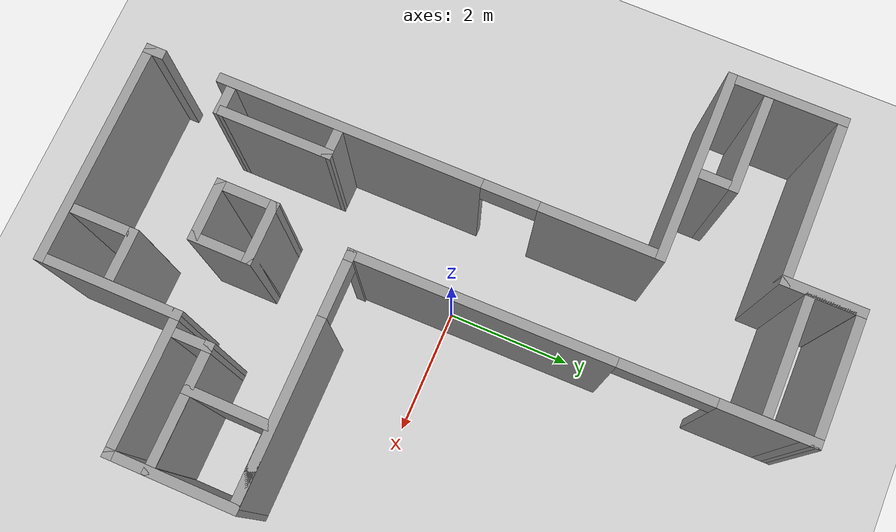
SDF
<?xml version="1.0" ?>
<sdf version="1.4">
  <world name="default">
    <include>
      <uri>model://ground_plane</uri>
    </include>
    <include>
      <uri>model://sun</uri>
    </include>
    <include>
      <uri>model://solustar</uri>
      <name>solustar</name>
    </include>
  </world>
</sdf>

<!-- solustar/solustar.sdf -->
<sdf version='1.6'>
  <model name='solustar'>
    <pose frame=''>-0.170671 -0.004278 0 0 -0 0</pose>
    <link name='Wall_10'>
      <collision name='Wall_10_Collision'>
        <geometry>
          <box>
            <size>1.75 0.15 2.5</size>
          </box>
        </geometry>
        <pose frame=''>0 0 1.25 0 -0 0</pose>
      </collision>
      <visual name='Wall_10_Visual'>
        <pose frame=''>0 0 1.25 0 -0 0</pose>
        <geometry>
          <box>
            <size>1.75 0.15 2.5</size>
          </box>
        </geometry>
        <material>
          <script>
            <uri>file://media/materials/scripts/gazebo.material</uri>
            <name>Gazebo/Grey</name>
          </script>
          <ambient>1 1 1 1</ambient>
        </material>
        <meta>
          <layer>0</layer>
        </meta>
      </visual>
      <pose frame=''>-4.24644 3.55005 0 0 -0 -1.5708</pose>
    </link>
    <link name='Wall_100'>
      <collision name='Wall_100_Collision'>
        <geometry>
          <box>
            <size>1.2 0.15 2.5</size>
          </box>
        </geometry>
        <pose frame=''>0 0 1.25 0 -0 0</pose>
      </collision>
      <visual name='Wall_100_Visual'>
        <pose frame=''>0 0 1.25 0 -0 0</pose>
        <geometry>
          <box>
            <size>1.2 0.15 2.5</size>
          </box>
        </geometry>
        <material>
          <script>
            <uri>file://media/materials/scripts/gazebo.material</uri>
            <name>Gazebo/Grey</name>
          </script>
          <ambient>1 1 1 1</ambient>
        </material>
        <meta>
          <layer>0</layer>
        </meta>
      </visual>
      <pose frame=''>3.57455 -1.46015 0 0 -0 3.14159</pose>
    </link>
    <link name='Wall_103'>
      <collision name='Wall_103_Collision'>
        <geometry>
          <box>
            <size>1.2 0.15 2.5</size>
          </box>
        </geometry>
        <pose frame=''>0 0 1.25 0 -0 0</pose>
      </collision>
      <visual name='Wall_103_Visual'>
        <pose frame=''>0 0 1.25 0 -0 0</pose>
        <geometry>
          <box>
            <size>1.2 0.15 2.5</size>
          </box>
        </geometry>
        <material>
          <script>
            <uri>file://media/materials/scripts/gazebo.material</uri>
            <name>Gazebo/Grey</name>
          </script>
          <ambient>1 1 1 1</ambient>
        </material>
        <meta>
          <layer>0</layer>
        </meta>
      </visual>
      <pose frame=''>3.56613 -2.72793 0 0 -0 0</pose>
    </link>
    <link name='Wall_107'>
      <collision name='Wall_107_Collision'>
        <geometry>
          <box>
            <size>1.4178 0.15 2.5</size>
          </box>
        </geometry>
        <pose frame=''>0 0 1.25 0 -0 0</pose>
      </collision>
      <visual name='Wall_107_Visual'>
        <pose frame=''>0 0 1.25 0 -0 0</pose>
        <geometry>
          <box>
            <size>1.4178 0.15 2.5</size>
          </box>
        </geometry>
        <material>
          <script>
            <uri>file://media/materials/scripts/gazebo.material</uri>
            <name>Gazebo/Grey</name>
          </script>
          <ambient>1 1 1 1</ambient>
        </material>
        <meta>
          <layer>0</layer>
        </meta>
      </visual>
      <pose frame=''>3.04534 -2.09404 0 0 -0 1.56416</pose>
    </link>
    <link name='Wall_12'>
      <collision name='Wall_12_Collision'>
        <geometry>
          <box>
            <size>1.29 0.15 2.5</size>
          </box>
        </geometry>
        <pose frame=''>0 0 1.25 0 -0 0</pose>
      </collision>
      <visual name='Wall_12_Visual'>
        <pose frame=''>0 0 1.25 0 -0 0</pose>
        <geometry>
          <box>
            <size>1.29 0.15 2.5</size>
          </box>
        </geometry>
        <material>
          <script>
            <uri>file://media/materials/scripts/gazebo.material</uri>
            <name>Gazebo/Grey</name>
          </script>
          <ambient>1 1 1 1</ambient>
        </material>
        <meta>
          <layer>0</layer>
        </meta>
      </visual>
      <pose frame=''>-1.63769 4.92005 0 0 -0 1.5708</pose>
    </link>
    <link name='Wall_16'>
      <collision name='Wall_16_Collision'>
        <geometry>
          <box>
            <size>3.095 0.15 2.5</size>
          </box>
        </geometry>
        <pose frame=''>0 0 1.25 0 -0 0</pose>
      </collision>
      <visual name='Wall_16_Visual'>
        <pose frame=''>0 0 1.25 0 -0 0</pose>
        <geometry>
          <box>
            <size>3.095 0.15 2.5</size>
          </box>
        </geometry>
        <material>
          <script>
            <uri>file://media/materials/scripts/gazebo.material</uri>
            <name>Gazebo/Grey</name>
          </script>
          <ambient>1 1 1 1</ambient>
        </material>
        <meta>
          <layer>0</layer>
        </meta>
      </visual>
      <pose frame=''>-2.77502 2.60995 0 0 -0 3.14159</pose>
    </link>
    <link name='Wall_19'>
      <pose frame=''>-1.30252 -1.44005 0 0 -0 -1.5708</pose>
      <visual name='Wall_19_Visual_0'>
        <pose frame=''>-3.1502 0 1.25 0 -0 0</pose>
        <geometry>
          <box>
            <size>1.9496 0.15 2.5</size>
          </box>
        </geometry>
        <material>
          <script>
            <uri>file://media/materials/scripts/gazebo.material</uri>
            <name>Gazebo/Grey</name>
          </script>
          <ambient>1 1 1 1</ambient>
        </material>
        <meta>
          <layer>0</layer>
        </meta>
      </visual>
      <collision name='Wall_19_Collision_0'>
        <geometry>
          <box>
            <size>1.9496 0.15 2.5</size>
          </box>
        </geometry>
        <pose frame=''>-3.1502 0 1.25 0 -0 0</pose>
      </collision>
      <visual name='Wall_19_Visual_1'>
        <pose frame=''>0.813883 0 1.25 0 -0 0</pose>
        <geometry>
          <box>
            <size>4.21857 0.15 2.5</size>
          </box>
        </geometry>
        <material>
          <script>
            <uri>file://media/materials/scripts/gazebo.material</uri>
            <name>Gazebo/Grey</name>
          </script>
          <ambient>1 1 1 1</ambient>
        </material>
        <meta>
          <layer>0</layer>
        </meta>
      </visual>
      <collision name='Wall_19_Collision_1'>
        <geometry>
          <box>
            <size>4.21857 0.15 2.5</size>
          </box>
        </geometry>
        <pose frame=''>0.813883 0 1.25 0 -0 0</pose>
      </collision>
      <visual name='Wall_19_Visual_2'>
        <pose frame=''>3.96408 0 1.25 0 -0 0</pose>
        <geometry>
          <box>
            <size>0.321831 0.15 2.5</size>
          </box>
        </geometry>
        <material>
          <script>
            <uri>file://media/materials/scripts/gazebo.material</uri>
            <name>Gazebo/Grey</name>
          </script>
          <ambient>1 1 1 1</ambient>
        </material>
        <meta>
          <layer>0</layer>
        </meta>
      </visual>
      <collision name='Wall_19_Collision_2'>
        <geometry>
          <box>
            <size>0.321831 0.15 2.5</size>
          </box>
        </geometry>
        <pose frame=''>3.96408 0 1.25 0 -0 0</pose>
      </collision>
      <visual name='Wall_19_Visual_3'>
        <pose frame=''>-1.7354 0 2.25 0 -0 0</pose>
        <geometry>
          <box>
            <size>0.88 0.15 0.5</size>
          </box>
        </geometry>
        <material>
          <script>
            <uri>file://media/materials/scripts/gazebo.material</uri>
            <name>Gazebo/Grey</name>
          </script>
          <ambient>1 1 1 1</ambient>
        </material>
        <meta>
          <layer>0</layer>
        </meta>
      </visual>
      <collision name='Wall_19_Collision_3'>
        <geometry>
          <box>
            <size>0.88 0.15 0.5</size>
          </box>
        </geometry>
        <pose frame=''>-1.7354 0 2.25 0 -0 0</pose>
      </collision>
      <visual name='Wall_19_Visual_4'>
        <pose frame=''>2.92317 0 2.25 0 -0 0</pose>
        <geometry>
          <box>
            <size>0 0.15 0.5</size>
          </box>
        </geometry>
        <material>
          <script>
            <uri>file://media/materials/scripts/gazebo.material</uri>
            <name>Gazebo/Grey</name>
          </script>
          <ambient>1 1 1 1</ambient>
        </material>
        <meta>
          <layer>0</layer>
        </meta>
      </visual>
      <collision name='Wall_19_Collision_4'>
        <geometry>
          <box>
            <size>0 0.15 0.5</size>
          </box>
        </geometry>
        <pose frame=''>2.92317 0 2.25 0 -0 0</pose>
      </collision>
    </link>
    <link name='Wall_2'>
      <collision name='Wall_2_Collision'>
        <geometry>
          <box>
            <size>2 0.15 2.5</size>
          </box>
        </geometry>
        <pose frame=''>0 0 1.25 0 -0 0</pose>
      </collision>
      <visual name='Wall_2_Visual'>
        <pose frame=''>0 0 1.25 0 -0 0</pose>
        <geometry>
          <box>
            <size>2 0.15 2.5</size>
          </box>
        </geometry>
        <material>
          <script>
            <uri>file://media/materials/scripts/gazebo.material</uri>
            <name>Gazebo/Grey</name>
          </script>
          <ambient>1 1 1 1</ambient>
        </material>
        <meta>
          <layer>0</layer>
        </meta>
      </visual>
      <pose frame=''>-0.580098 5.48936 0 0 -0 0</pose>
    </link>
    <link name='Wall_21'>
      <collision name='Wall_21_Collision'>
        <geometry>
          <box>
            <size>3.6 0.15 2.5</size>
          </box>
        </geometry>
        <pose frame=''>0 0 1.25 0 -0 0</pose>
      </collision>
      <visual name='Wall_21_Visual'>
        <pose frame=''>0 0 1.25 0 -0 0</pose>
        <geometry>
          <box>
            <size>3.6 0.15 2.5</size>
          </box>
        </geometry>
        <material>
          <script>
            <uri>file://media/materials/scripts/gazebo.material</uri>
            <name>Gazebo/Grey</name>
          </script>
          <ambient>1 1 1 1</ambient>
        </material>
        <meta>
          <layer>0</layer>
        </meta>
      </visual>
      <pose frame=''>0.42248 -5.49005 0 0 -0 0</pose>
    </link>
    <link name='Wall_24'>
      <collision name='Wall_24_Collision'>
        <geometry>
          <box>
            <size>2.3 0.15 2.5</size>
          </box>
        </geometry>
        <pose frame=''>0 0 1.25 0 -0 0</pose>
      </collision>
      <visual name='Wall_24_Visual'>
        <pose frame=''>0 0 1.25 0 -0 0</pose>
        <geometry>
          <box>
            <size>2.3 0.15 2.5</size>
          </box>
        </geometry>
        <material>
          <script>
            <uri>file://media/materials/scripts/gazebo.material</uri>
            <name>Gazebo/Grey</name>
          </script>
          <ambient>1 1 1 1</ambient>
        </material>
        <meta>
          <layer>0</layer>
        </meta>
      </visual>
      <pose frame=''>2.14748 -4.41505 0 0 -0 1.5708</pose>
    </link>
    <link name='Wall_26'>
      <collision name='Wall_26_Collision'>
        <geometry>
          <box>
            <size>2.25 0.15 2.5</size>
          </box>
        </geometry>
        <pose frame=''>0 0 1.25 0 -0 0</pose>
      </collision>
      <visual name='Wall_26_Visual'>
        <pose frame=''>0 0 1.25 0 -0 0</pose>
        <geometry>
          <box>
            <size>2.25 0.15 2.5</size>
          </box>
        </geometry>
        <material>
          <script>
            <uri>file://media/materials/scripts/gazebo.material</uri>
            <name>Gazebo/Grey</name>
          </script>
          <ambient>1 1 1 1</ambient>
        </material>
        <meta>
          <layer>0</layer>
        </meta>
      </visual>
      <pose frame=''>3.19748 -3.34005 0 0 -0 0</pose>
    </link>
    <link name='Wall_28'>
      <collision name='Wall_28_Collision'>
        <geometry>
          <box>
            <size>2.03552 0.15 2.5</size>
          </box>
        </geometry>
        <pose frame=''>0 0 1.25 0 -0 0</pose>
      </collision>
      <visual name='Wall_28_Visual'>
        <pose frame=''>0 0 1.25 0 -0 0</pose>
        <geometry>
          <box>
            <size>2.03552 0.15 2.5</size>
          </box>
        </geometry>
        <material>
          <script>
            <uri>file://media/materials/scripts/gazebo.material</uri>
            <name>Gazebo/Grey</name>
          </script>
          <ambient>1 1 1 1</ambient>
        </material>
        <meta>
          <layer>0</layer>
        </meta>
      </visual>
      <pose frame=''>4.24698 -2.39729 0 0 -0 -1.57026</pose>
    </link>
    <link name='Wall_32'>
      <collision name='Wall_32_Collision'>
        <geometry>
          <box>
            <size>0.46 0.15 2.5</size>
          </box>
        </geometry>
        <pose frame=''>0 0 1.25 0 -0 0</pose>
      </collision>
      <visual name='Wall_32_Visual'>
        <pose frame=''>0 0 1.25 0 -0 0</pose>
        <geometry>
          <box>
            <size>0.46 0.15 2.5</size>
          </box>
        </geometry>
        <material>
          <script>
            <uri>file://media/materials/scripts/gazebo.material</uri>
            <name>Gazebo/Grey</name>
          </script>
          <ambient>1 1 1 1</ambient>
        </material>
        <meta>
          <layer>0</layer>
        </meta>
      </visual>
      <pose frame=''>-0.99833 -2.38472 0 0 -0 0</pose>
    </link>
    <link name='Wall_34'>
      <collision name='Wall_34_Collision'>
        <geometry>
          <box>
            <size>0.46 0.15 2.5</size>
          </box>
        </geometry>
        <pose frame=''>0 0 1.25 0 -0 0</pose>
      </collision>
      <visual name='Wall_34_Visual'>
        <pose frame=''>0 0 1.25 0 -0 0</pose>
        <geometry>
          <box>
            <size>0.46 0.15 2.5</size>
          </box>
        </geometry>
        <material>
          <script>
            <uri>file://media/materials/scripts/gazebo.material</uri>
            <name>Gazebo/Grey</name>
          </script>
          <ambient>1 1 1 1</ambient>
        </material>
        <meta>
          <layer>0</layer>
        </meta>
      </visual>
      <pose frame=''>-0.993737 -4.1113 0 0 -0 0</pose>
    </link>
    <link name='Wall_37'>
      <collision name='Wall_37_Collision'>
        <geometry>
          <box>
            <size>1.87658 0.15 2.5</size>
          </box>
        </geometry>
        <pose frame=''>0 0 1.25 0 -0 0</pose>
      </collision>
      <visual name='Wall_37_Visual'>
        <pose frame=''>0 0 1.25 0 -0 0</pose>
        <geometry>
          <box>
            <size>1.87658 0.15 2.5</size>
          </box>
        </geometry>
        <material>
          <script>
            <uri>file://media/materials/scripts/gazebo.material</uri>
            <name>Gazebo/Grey</name>
          </script>
          <ambient>1 1 1 1</ambient>
        </material>
        <meta>
          <layer>0</layer>
        </meta>
      </visual>
      <pose frame=''>-0.841033 -3.24801 0 0 -0 -1.56814</pose>
    </link>
    <link name='Wall_4'>
      <pose frame=''>0.370687 2.01741 0 0 -0 -1.56337</pose>
      <visual name='Wall_4_Visual_0'>
        <pose frame=''>-2.79204 0 1.25 0 -0 0</pose>
        <geometry>
          <box>
            <size>1.51 0.15 2.5</size>
          </box>
        </geometry>
        <material>
          <script>
            <uri>file://media/materials/scripts/gazebo.material</uri>
            <name>Gazebo/Grey</name>
          </script>
          <ambient>1 1 1 1</ambient>
        </material>
        <meta>
          <layer>0</layer>
        </meta>
      </visual>
      <collision name='Wall_4_Collision_0'>
        <geometry>
          <box>
            <size>1.51 0.15 2.5</size>
          </box>
        </geometry>
        <pose frame=''>-2.79204 0 1.25 0 -0 0</pose>
      </collision>
      <visual name='Wall_4_Visual_1'>
        <pose frame=''>1.49 0 1.25 0 -0 0</pose>
        <geometry>
          <box>
            <size>4.11409 0.15 2.5</size>
          </box>
        </geometry>
        <material>
          <script>
            <uri>file://media/materials/scripts/gazebo.material</uri>
            <name>Gazebo/Grey</name>
          </script>
          <ambient>1 1 1 1</ambient>
        </material>
        <meta>
          <layer>0</layer>
        </meta>
      </visual>
      <collision name='Wall_4_Collision_1'>
        <geometry>
          <box>
            <size>4.11409 0.15 2.5</size>
          </box>
        </geometry>
        <pose frame=''>1.49 0 1.25 0 -0 0</pose>
      </collision>
      <visual name='Wall_4_Visual_2'>
        <pose frame=''>-1.30204 0 2.25 0 -0 0</pose>
        <geometry>
          <box>
            <size>1.47 0.15 0.5</size>
          </box>
        </geometry>
        <material>
          <script>
            <uri>file://media/materials/scripts/gazebo.material</uri>
            <name>Gazebo/Grey</name>
          </script>
          <ambient>1 1 1 1</ambient>
        </material>
        <meta>
          <layer>0</layer>
        </meta>
      </visual>
      <collision name='Wall_4_Collision_2'>
        <geometry>
          <box>
            <size>1.47 0.15 0.5</size>
          </box>
        </geometry>
        <pose frame=''>-1.30204 0 2.25 0 -0 0</pose>
      </collision>
    </link>
    <link name='Wall_40'>
      <collision name='Wall_40_Collision'>
        <geometry>
          <box>
            <size>0.61 0.15 2.5</size>
          </box>
        </geometry>
        <pose frame=''>0 0 1.25 0 -0 0</pose>
      </collision>
      <visual name='Wall_40_Visual'>
        <pose frame=''>0 0 1.25 0 -0 0</pose>
        <geometry>
          <box>
            <size>0.61 0.15 2.5</size>
          </box>
        </geometry>
        <material>
          <script>
            <uri>file://media/materials/scripts/gazebo.material</uri>
            <name>Gazebo/Grey</name>
          </script>
          <ambient>1 1 1 1</ambient>
        </material>
        <meta>
          <layer>0</layer>
        </meta>
      </visual>
      <pose frame=''>2.39194 -2.95924 0 0 -0 -1.5708</pose>
    </link>
    <link name='Wall_42'>
      <collision name='Wall_42_Collision'>
        <geometry>
          <box>
            <size>2.0057 0.15 2.5</size>
          </box>
        </geometry>
        <pose frame=''>0 0 1.25 0 -0 0</pose>
      </collision>
      <visual name='Wall_42_Visual'>
        <pose frame=''>0 0 1.25 0 -0 0</pose>
        <geometry>
          <box>
            <size>2.0057 0.15 2.5</size>
          </box>
        </geometry>
        <material>
          <script>
            <uri>file://media/materials/scripts/gazebo.material</uri>
            <name>Gazebo/Grey</name>
          </script>
          <ambient>1 1 1 1</ambient>
        </material>
        <meta>
          <layer>0</layer>
        </meta>
      </visual>
      <pose frame=''>3.31218 -2.73209 0 0 -0 -0.003069</pose>
    </link>
    <link name='Wall_44'>
      <collision name='Wall_44_Collision'>
        <geometry>
          <box>
            <size>0.75 0.15 2.5</size>
          </box>
        </geometry>
        <pose frame=''>0 0 1.25 0 -0 0</pose>
      </collision>
      <visual name='Wall_44_Visual'>
        <pose frame=''>0 0 1.25 0 -0 0</pose>
        <geometry>
          <box>
            <size>0.75 0.15 2.5</size>
          </box>
        </geometry>
        <material>
          <script>
            <uri>file://media/materials/scripts/gazebo.material</uri>
            <name>Gazebo/Grey</name>
          </script>
          <ambient>1 1 1 1</ambient>
        </material>
        <meta>
          <layer>0</layer>
        </meta>
      </visual>
      <pose frame=''>0.346614 5.03986 0 0 -0 -1.5708</pose>
    </link>
    <link name='Wall_49'>
      <collision name='Wall_49_Collision'>
        <geometry>
          <box>
            <size>0.75 0.15 2.5</size>
          </box>
        </geometry>
        <pose frame=''>0 0 1.25 0 -0 0</pose>
      </collision>
      <visual name='Wall_49_Visual'>
        <pose frame=''>0 0 1.25 0 -0 0</pose>
        <geometry>
          <box>
            <size>0.75 0.15 2.5</size>
          </box>
        </geometry>
        <material>
          <script>
            <uri>file://media/materials/scripts/gazebo.material</uri>
            <name>Gazebo/Grey</name>
          </script>
          <ambient>1 1 1 1</ambient>
        </material>
        <meta>
          <layer>0</layer>
        </meta>
      </visual>
      <pose frame=''>-1.63714 5.03325 0 0 -0 -1.5708</pose>
    </link>
    <link name='Wall_51'>
      <collision name='Wall_51_Collision'>
        <geometry>
          <box>
            <size>2.13376 0.15 2.5</size>
          </box>
        </geometry>
        <pose frame=''>0 0 1.25 0 -0 0</pose>
      </collision>
      <visual name='Wall_51_Visual'>
        <pose frame=''>0 0 1.25 0 -0 0</pose>
        <geometry>
          <box>
            <size>2.13376 0.15 2.5</size>
          </box>
        </geometry>
        <material>
          <script>
            <uri>file://media/materials/scripts/gazebo.material</uri>
            <name>Gazebo/Grey</name>
          </script>
          <ambient>1 1 1 1</ambient>
        </material>
        <meta>
          <layer>0</layer>
        </meta>
      </visual>
      <pose frame=''>-0.645261 4.73656 0 0 -0 0.003333</pose>
    </link>
    <link name='Wall_6'>
      <pose frame=''>2.32147 -1.45454 0 0 -0 0</pose>
      <visual name='Wall_6_Visual_0'>
        <pose frame=''>-1.90789 0 1.25 0 -0 0</pose>
        <geometry>
          <box>
            <size>0.184225 0.15 2.5</size>
          </box>
        </geometry>
        <material>
          <script>
            <uri>file://media/materials/scripts/gazebo.material</uri>
            <name>Gazebo/Grey</name>
          </script>
          <ambient>1 1 1 1</ambient>
        </material>
        <meta>
          <layer>0</layer>
        </meta>
      </visual>
      <collision name='Wall_6_Collision_0'>
        <geometry>
          <box>
            <size>0.184225 0.15 2.5</size>
          </box>
        </geometry>
        <pose frame=''>-1.90789 0 1.25 0 -0 0</pose>
      </collision>
      <visual name='Wall_6_Visual_1'>
        <pose frame=''>0.532113 0 1.25 0 -0 0</pose>
        <geometry>
          <box>
            <size>2.93578 0.15 2.5</size>
          </box>
        </geometry>
        <material>
          <script>
            <uri>file://media/materials/scripts/gazebo.material</uri>
            <name>Gazebo/Grey</name>
          </script>
          <ambient>1 1 1 1</ambient>
        </material>
        <meta>
          <layer>0</layer>
        </meta>
      </visual>
      <collision name='Wall_6_Collision_1'>
        <geometry>
          <box>
            <size>2.93578 0.15 2.5</size>
          </box>
        </geometry>
        <pose frame=''>0.532113 0 1.25 0 -0 0</pose>
      </collision>
      <visual name='Wall_6_Visual_2'>
        <pose frame=''>-1.37577 0 2.25 0 -0 0</pose>
        <geometry>
          <box>
            <size>0.88 0.15 0.5</size>
          </box>
        </geometry>
        <material>
          <script>
            <uri>file://media/materials/scripts/gazebo.material</uri>
            <name>Gazebo/Grey</name>
          </script>
          <ambient>1 1 1 1</ambient>
        </material>
        <meta>
          <layer>0</layer>
        </meta>
      </visual>
      <collision name='Wall_6_Collision_2'>
        <geometry>
          <box>
            <size>0.88 0.15 0.5</size>
          </box>
        </geometry>
        <pose frame=''>-1.37577 0 2.25 0 -0 0</pose>
      </collision>
    </link>
    <link name='Wall_73'>
      <collision name='Wall_73_Collision'>
        <geometry>
          <box>
            <size>0.47 0.15 2.5</size>
          </box>
        </geometry>
        <pose frame=''>0 0 1.25 0 -0 0</pose>
      </collision>
      <visual name='Wall_73_Visual'>
        <pose frame=''>0 0 1.25 0 -0 0</pose>
        <geometry>
          <box>
            <size>0.47 0.15 2.5</size>
          </box>
        </geometry>
        <material>
          <script>
            <uri>file://media/materials/scripts/gazebo.material</uri>
            <name>Gazebo/Grey</name>
          </script>
          <ambient>1 1 1 1</ambient>
        </material>
        <meta>
          <layer>0</layer>
        </meta>
      </visual>
      <pose frame=''>-2.67204 2.9175 0 0 -0 -1.5708</pose>
    </link>
    <link name='Wall_75'>
      <collision name='Wall_75_Collision'>
        <geometry>
          <box>
            <size>1.57 0.15 2.5</size>
          </box>
        </geometry>
        <pose frame=''>0 0 1.25 0 -0 0</pose>
      </collision>
      <visual name='Wall_75_Visual'>
        <pose frame=''>0 0 1.25 0 -0 0</pose>
        <geometry>
          <box>
            <size>1.57 0.15 2.5</size>
          </box>
        </geometry>
        <material>
          <script>
            <uri>file://media/materials/scripts/gazebo.material</uri>
            <name>Gazebo/Grey</name>
          </script>
          <ambient>1 1 1 1</ambient>
        </material>
        <meta>
          <layer>0</layer>
        </meta>
      </visual>
      <pose frame=''>-3.38204 3.21829 0 0 -0 3.14159</pose>
    </link>
    <link name='Wall_8'>
      <collision name='Wall_8_Collision'>
        <geometry>
          <box>
            <size>2.75874 0.15 2.5</size>
          </box>
        </geometry>
        <pose frame=''>0 0 1.25 0 -0 0</pose>
      </collision>
      <visual name='Wall_8_Visual'>
        <pose frame=''>0 0 1.25 0 -0 0</pose>
        <geometry>
          <box>
            <size>2.75874 0.15 2.5</size>
          </box>
        </geometry>
        <material>
          <script>
            <uri>file://media/materials/scripts/gazebo.material</uri>
            <name>Gazebo/Grey</name>
          </script>
          <ambient>1 1 1 1</ambient>
        </material>
        <meta>
          <layer>0</layer>
        </meta>
      </visual>
      <pose frame=''>-2.94207 4.35005 0 0 -0 0</pose>
    </link>
    <link name='Wall_91'>
      <collision name='Wall_91_Collision'>
        <geometry>
          <box>
            <size>1 0.15 2.5</size>
          </box>
        </geometry>
        <pose frame=''>0 0 1.25 0 -0 0</pose>
      </collision>
      <visual name='Wall_91_Visual'>
        <pose frame=''>0 0 1.25 0 -0 0</pose>
        <geometry>
          <box>
            <size>1 0.15 2.5</size>
          </box>
        </geometry>
        <material>
          <script>
            <uri>file://media/materials/scripts/gazebo.material</uri>
            <name>Gazebo/Grey</name>
          </script>
          <ambient>1 1 1 1</ambient>
        </material>
        <meta>
          <layer>0</layer>
        </meta>
      </visual>
      <pose frame=''>0.608866 -2.76551 0 0 -0 0</pose>
    </link>
    <link name='Wall_92'>
      <collision name='Wall_92_Collision'>
        <geometry>
          <box>
            <size>1 0.15 2.5</size>
          </box>
        </geometry>
        <pose frame=''>0 0 1.25 0 -0 0</pose>
      </collision>
      <visual name='Wall_92_Visual'>
        <pose frame=''>0 0 1.25 0 -0 0</pose>
        <geometry>
          <box>
            <size>1 0.15 2.5</size>
          </box>
        </geometry>
        <material>
          <script>
            <uri>file://media/materials/scripts/gazebo.material</uri>
            <name>Gazebo/Grey</name>
          </script>
          <ambient>1 1 1 1</ambient>
        </material>
        <meta>
          <layer>0</layer>
        </meta>
      </visual>
      <pose frame=''>1.03387 -3.19051 0 0 -0 -1.5708</pose>
    </link>
    <link name='Wall_93'>
      <collision name='Wall_93_Collision'>
        <geometry>
          <box>
            <size>1 0.15 2.5</size>
          </box>
        </geometry>
        <pose frame=''>0 0 1.25 0 -0 0</pose>
      </collision>
      <visual name='Wall_93_Visual'>
        <pose frame=''>0 0 1.25 0 -0 0</pose>
        <geometry>
          <box>
            <size>1 0.15 2.5</size>
          </box>
        </geometry>
        <material>
          <script>
            <uri>file://media/materials/scripts/gazebo.material</uri>
            <name>Gazebo/Grey</name>
          </script>
          <ambient>1 1 1 1</ambient>
        </material>
        <meta>
          <layer>0</layer>
        </meta>
      </visual>
      <pose frame=''>0.608866 -3.61551 0 0 -0 3.14159</pose>
    </link>
    <link name='Wall_94'>
      <collision name='Wall_94_Collision'>
        <geometry>
          <box>
            <size>1 0.15 2.5</size>
          </box>
        </geometry>
        <pose frame=''>0 0 1.25 0 -0 0</pose>
      </collision>
      <visual name='Wall_94_Visual'>
        <pose frame=''>0 0 1.25 0 -0 0</pose>
        <geometry>
          <box>
            <size>1 0.15 2.5</size>
          </box>
        </geometry>
        <material>
          <script>
            <uri>file://media/materials/scripts/gazebo.material</uri>
            <name>Gazebo/Grey</name>
          </script>
          <ambient>1 1 1 1</ambient>
        </material>
        <meta>
          <layer>0</layer>
        </meta>
      </visual>
      <pose frame=''>0.183866 -3.19051 0 0 -0 1.5708</pose>
    </link>
    <link name='Wall_96'>
      <collision name='Wall_96_Collision'>
        <geometry>
          <box>
            <size>0.81 0.15 2.5</size>
          </box>
        </geometry>
        <pose frame=''>0 0 1.25 0 -0 0</pose>
      </collision>
      <visual name='Wall_96_Visual'>
        <pose frame=''>0 0 1.25 0 -0 0</pose>
        <geometry>
          <box>
            <size>0.81 0.15 2.5</size>
          </box>
        </geometry>
        <material>
          <script>
            <uri>file://media/materials/scripts/gazebo.material</uri>
            <name>Gazebo/Grey</name>
          </script>
          <ambient>1 1 1 1</ambient>
        </material>
        <meta>
          <layer>0</layer>
        </meta>
      </visual>
      <pose frame=''>1.66427 -4.44218 0 0 -0 3.14159</pose>
    </link>
    <link name='Wall_98'>
      <collision name='Wall_98_Collision'>
        <geometry>
          <box>
            <size>1.04 0.15 2.5</size>
          </box>
        </geometry>
        <pose frame=''>0 0 1.25 0 -0 0</pose>
      </collision>
      <visual name='Wall_98_Visual'>
        <pose frame=''>0 0 1.25 0 -0 0</pose>
        <geometry>
          <box>
            <size>1.04 0.15 2.5</size>
          </box>
        </geometry>
        <material>
          <script>
            <uri>file://media/materials/scripts/gazebo.material</uri>
            <name>Gazebo/Grey</name>
          </script>
          <ambient>1 1 1 1</ambient>
        </material>
        <meta>
          <layer>0</layer>
        </meta>
      </visual>
      <pose frame=''>1.33285 -4.88718 0 0 -0 -1.5708</pose>
    </link>
    <static>1</static>
  </model>
</sdf>
